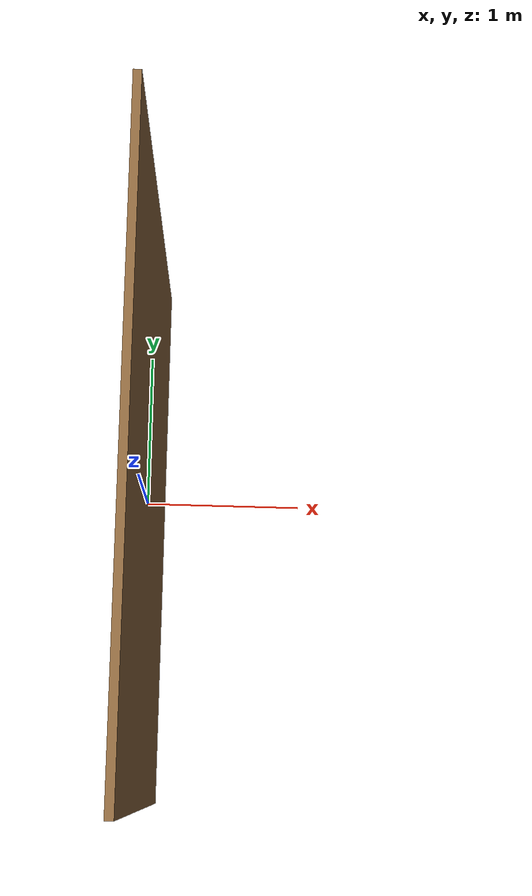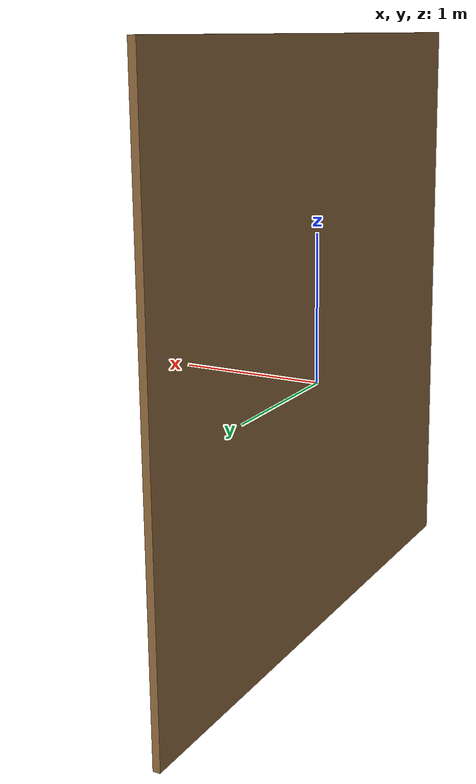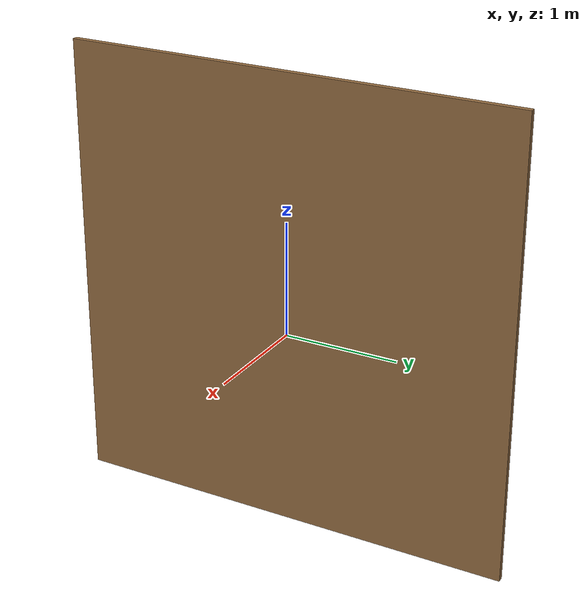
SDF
<?xml version="1.0"?>
<sdf version="1.6">
  <model name='wall'>
      <pose frame=''>0 0 0 0 -0 0</pose>
      <static>1</static>
      <link name='wall::link'>
        <pose frame=''>0 0 0.25 0 -0 0</pose>
        <collision name='collision'>
          <geometry>
            <box>
              <size>0.05 4 4</size>
            </box>
          </geometry>
          <max_contacts>10</max_contacts>
          <surface>
            <contact>
              <ode/>
            </contact>
            <bounce/>
            <friction>
              <torsional>
                <ode/>
              </torsional>
              <ode/>
            </friction>
          </surface>
        </collision>
        <visual name='visual'>
          <geometry>
            <box>
              <size>0.05 4 4</size>
            </box>
          </geometry>
          <material>
            <ambient>0.5 0.5 0.5 1</ambient>
            <diffuse>0.57 0.417 0.25 1</diffuse>
            <specular>0.1 0.1 0.1 1</specular>
            <emissive>0 0 0 0</emissive>
          </material>
        </visual>
        <self_collide>0</self_collide>
        <kinematic>0</kinematic>
        <gravity>1</gravity>
      </link>
</model>
</sdf>
